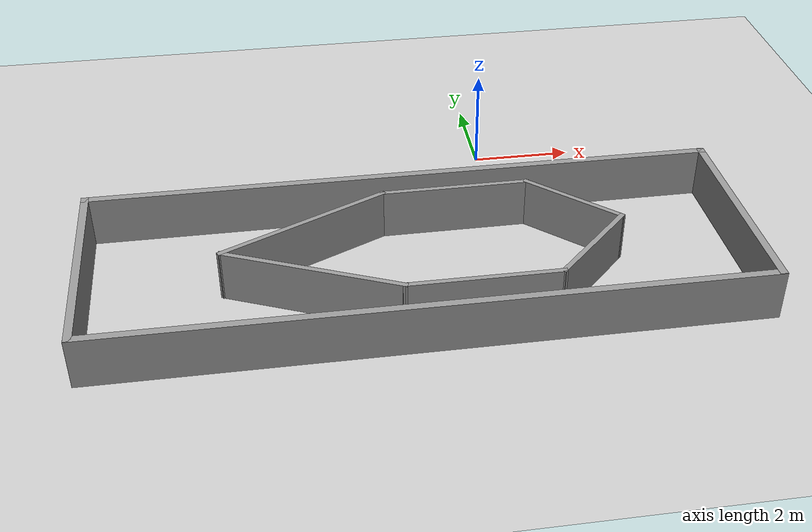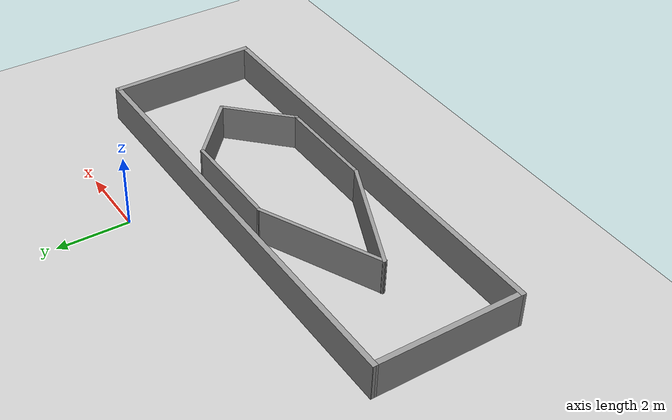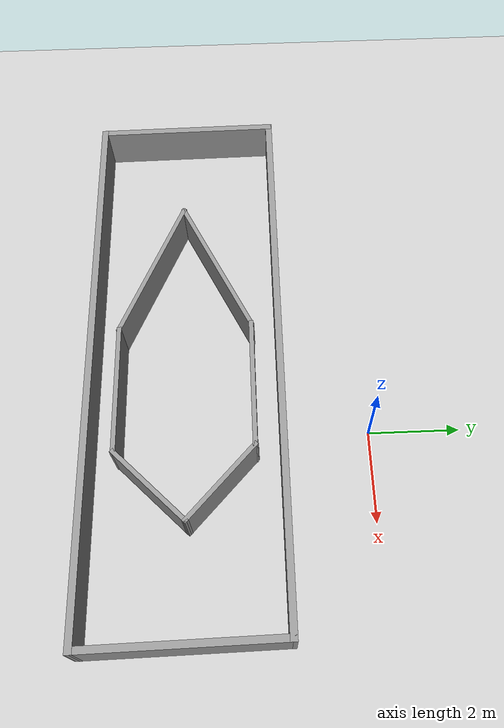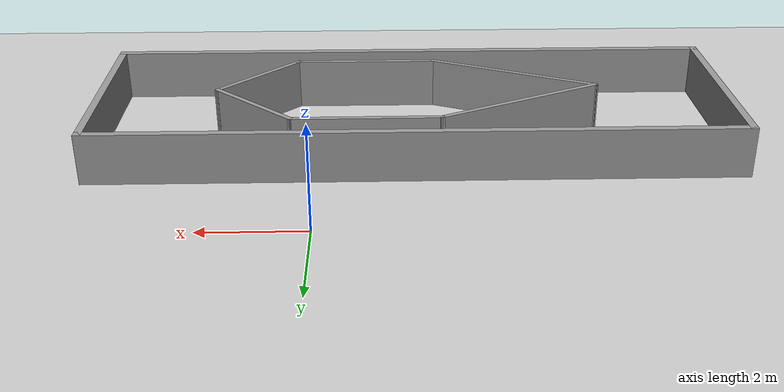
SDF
<sdf version="1.6">
 <world name="default">
  <light name="sun" type="directional">
   <pose>0 0 10 0 -0 0</pose>
   <diffuse>0.8 0.8 0.8 1</diffuse>
   <specular>0.1 0.1 0.1 1</specular>
   <attenuation>
    <range>1000</range>
    <constant>0.9</constant>
    <linear>0.01</linear>
    <quadratic>0.001</quadratic>
   </attenuation>
   <direction>-0.5 0.5 -1</direction>
  </light>
  <model name="ground_plane">
   <static>1</static>
   <link name="link">
    <collision name="collision">
     <geometry><plane><normal>0 0 1</normal><size>100 100</size></plane></geometry>
     <surface><friction><ode><mu>100</mu><mu2>50</mu2></ode></friction></surface>
    </collision>
    <visual name="visual">
     <cast_shadows>0</cast_shadows>
     <geometry><plane><normal>0 0 1</normal><size>100 100</size></plane></geometry>
     <material>
      <script><uri>file://media/materials/scripts/gazebo.material</uri><name>Gazebo/Grey</name></script>
     </material>
    </visual>
   </link>
  </model>
  <gravity>0 0 -9.8</gravity>
  <magnetic_field>6e-06 2.3e-05 -4.2e-05</magnetic_field>
  <atmosphere type="adiabatic"/>
  <physics name="default_physics" default="0" type="ode">
   <max_step_size>0.001</max_step_size>
   <real_time_factor>1</real_time_factor>
   <real_time_update_rate>1000</real_time_update_rate>
  </physics>
  <scene><ambient>0.4 0.4 0.4 1</ambient><background>0.7 0.7 0.7 1</background><shadows>1</shadows></scene>
  <spherical_coordinates>
   <surface_model>EARTH_WGS84</surface_model>
   <latitude_deg>0</latitude_deg>
   <longitude_deg>0</longitude_deg>
   <elevation>0</elevation>
   <heading_deg>0</heading_deg>
  </spherical_coordinates>
  <model name="Untitled">
   <pose>-1.84321 -3.92829 0 0 -0 0</pose>
   <link name="Wall_0">
    <collision name="Wall_0_Collision">
     <geometry><box><size>12.5 0.15 1</size></box></geometry>
     <pose>0 0 0.5 0 -0 0</pose>
    </collision>
    <visual name="Wall_0_Visual">
     <pose>0 0 0.5 0 -0 0</pose>
     <geometry><box><size>12.5 0.15 1</size></box></geometry>
     <material>
      <script><uri>file://media/materials/scripts/gazebo.material</uri><name>Gazebo/Grey</name></script>
      <ambient>1 1 1 1</ambient>
     </material>
    </visual>
    <pose>-0.025627 2.05996 0 0 -0 3.14159</pose>
   </link>
   <link name="Wall_1">
    <collision name="Wall_1_Collision">
     <geometry><box><size>4.23983 0.15 1</size></box></geometry>
     <pose>0 0 0.5 0 -0 0</pose>
    </collision>
    <visual name="Wall_1_Visual">
     <pose>0 0 0.5 0 -0 0</pose>
     <geometry><box><size>4.23983 0.15 1</size></box></geometry>
     <material>
      <script><uri>file://media/materials/scripts/gazebo.material</uri><name>Gazebo/Grey</name></script>
      <ambient>1 1 1 1</ambient>
     </material>
    </visual>
    <pose>-6.175 0 0 0 0 -1.55826</pose>
   </link>
   <link name="Wall_11">
    <collision name="Wall_11_Collision">
     <geometry><box><size>2.95 0.1 1</size></box></geometry>
     <pose>0 0 0.5 0 -0 0</pose>
    </collision>
    <visual name="Wall_11_Visual">
     <pose>0 0 0.5 0 -0 0</pose>
     <geometry><box><size>2.95 0.1 1</size></box></geometry>
     <material>
      <script><uri>file://media/materials/scripts/gazebo.material</uri><name>Gazebo/Grey</name></script>
      <ambient>1 1 1 1</ambient>
     </material>
    </visual>
    <pose>0.926208 1.46329 0 0 -0 0.002807</pose>
   </link>
   <link name="Wall_13">
    <collision name="Wall_13_Collision">
     <geometry><box><size>2.95 0.1 1</size></box></geometry>
     <pose>0 0 0.5 0 -0 0</pose>
    </collision>
    <visual name="Wall_13_Visual">
     <pose>0 0 0.5 0 -0 0</pose>
     <geometry><box><size>2.95 0.1 1</size></box></geometry>
     <material>
      <script><uri>file://media/materials/scripts/gazebo.material</uri><name>Gazebo/Grey</name></script>
      <ambient>1 1 1 1</ambient>
     </material>
    </visual>
    <pose>0.970208 -1.44671 0 0 -0 0</pose>
   </link>
   <link name="Wall_14">
    <collision name="Wall_14_Collision">
     <geometry><box><size>2.20506 0.1 1</size></box></geometry>
     <pose>0 0 0.5 0 -0 0</pose>
    </collision>
    <visual name="Wall_14_Visual">
     <pose>0 0 0.5 0 -0 0</pose>
     <geometry><box><size>2.20506 0.1 1</size></box></geometry>
     <material>
      <script><uri>file://media/materials/scripts/gazebo.material</uri><name>Gazebo/Grey</name></script>
      <ambient>1 1 1 1</ambient>
     </material>
    </visual>
    <pose>3.13771 -0.700709 0 0 -0 0.78775</pose>
   </link>
   <link name="Wall_15">
    <collision name="Wall_15_Collision">
     <geometry><box><size>2.18775 0.1 1</size></box></geometry>
     <pose>0 0 0.5 0 -0 0</pose>
    </collision>
    <visual name="Wall_15_Visual">
     <pose>0 0 0.5 0 -0 0</pose>
     <geometry><box><size>2.18775 0.1 1</size></box></geometry>
     <material>
      <script><uri>file://media/materials/scripts/gazebo.material</uri><name>Gazebo/Grey</name></script>
      <ambient>1 1 1 1</ambient>
     </material>
    </visual>
    <pose>3.11571 0.756291 0 0 -0 2.39244</pose>
   </link>
   <link name="Wall_17">
    <collision name="Wall_17_Collision">
     <geometry><box><size>4.23983 0.15 1</size></box></geometry>
     <pose>0 0 0.5 0 -0 0</pose>
    </collision>
    <visual name="Wall_17_Visual">
     <pose>0 0 0.5 0 -0 0</pose>
     <geometry><box><size>4.23983 0.15 1</size></box></geometry>
     <material>
      <script><uri>file://media/materials/scripts/gazebo.material</uri><name>Gazebo/Grey</name></script>
      <ambient>1 1 1 1</ambient>
     </material>
    </visual>
    <pose>6.175 0 0 0 0 -1.55826</pose>
   </link>
   <link name="Wall_2">
    <collision name="Wall_2_Collision">
     <geometry><box><size>12.5 0.15 1</size></box></geometry>
     <pose>0 0 0.5 0 -0 0</pose>
    </collision>
    <visual name="Wall_2_Visual">
     <pose>0 0 0.5 0 -0 0</pose>
     <geometry><box><size>12.5 0.15 1</size></box></geometry>
     <material>
      <script><uri>file://media/materials/scripts/gazebo.material</uri><name>Gazebo/Grey</name></script>
      <ambient>1 1 1 1</ambient>
     </material>
    </visual>
    <pose>0.025626 -2.05996 0 0 -0 0</pose>
   </link>
   <link name="Wall_4">
    <collision name="Wall_4_Collision">
     <geometry><box><size>3.58688 0.1 1</size></box></geometry>
     <pose>0 0 0.5 0 -0 0</pose>
    </collision>
    <visual name="Wall_4_Visual">
     <pose>0 0 0.5 0 -0 0</pose>
     <geometry><box><size>3.58688 0.1 1</size></box></geometry>
     <material>
      <script><uri>file://media/materials/scripts/gazebo.material</uri><name>Gazebo/Grey</name></script>
      <ambient>1 1 1 1</ambient>
     </material>
    </visual>
    <pose>-2.06979 0.703291 0 0 0 -2.69308</pose>
   </link>
   <link name="Wall_9">
    <collision name="Wall_9_Collision">
     <geometry><box><size>3.57745 0.1 1</size></box></geometry>
     <pose>0 0 0.5 0 -0 0</pose>
    </collision>
    <visual name="Wall_9_Visual">
     <pose>0 0 0.5 0 -0 0</pose>
     <geometry><box><size>3.57745 0.1 1</size></box></geometry>
     <material>
      <script><uri>file://media/materials/scripts/gazebo.material</uri><name>Gazebo/Grey</name></script>
      <ambient>1 1 1 1</ambient>
     </material>
    </visual>
    <pose>-2.04779 -0.749709 0 0 0 -0.412443</pose>
   </link>
   <static>1</static>
  </model>
 </world>
</sdf>
